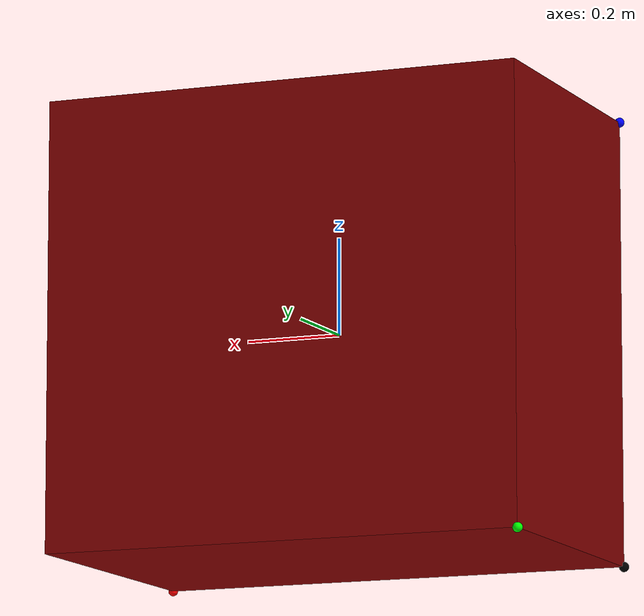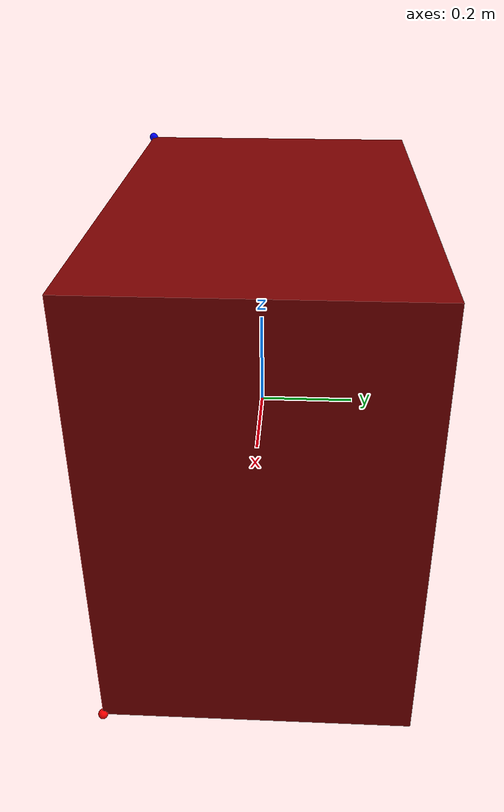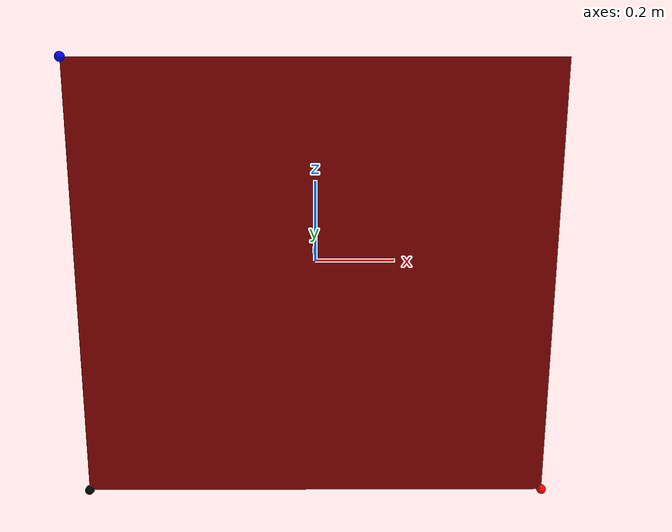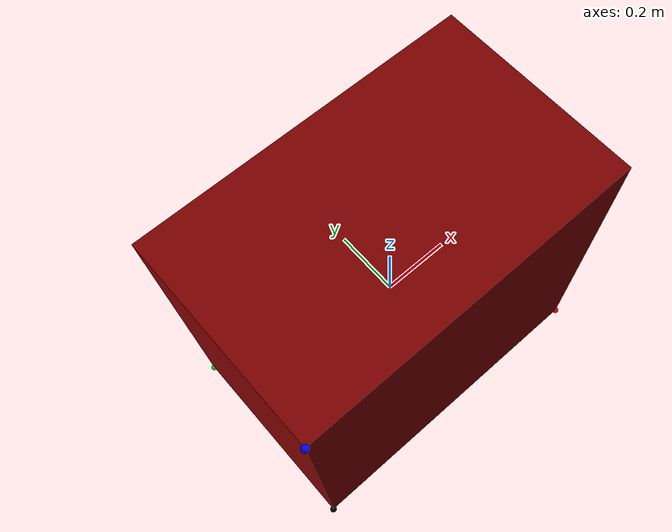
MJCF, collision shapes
<mujoco model="model">
  <compiler angle="radian"/>
  <asset>
    <texture file="visuals/material_0.png" name="tex-model" type="2d"/>
    <texture type="2d" name="image0" file="visuals/image0.png"/>
    <material name="model" reflectance="0.5" texrepeat="1 1" texture="tex-model" texuniform="false"/>
    <material name="Material.001" specular="0.5" shininess="1.0" rgba="0.000000 0.000000 0.000000 1.0"/>
    <material name="Material.002" specular="0.5" shininess="0.809999997" rgba="0.670724 0.670724 0.670724 1.0"/>
    <material name="Material.003" specular="0.5" shininess="1.0" rgba="0.363613 0.363613 0.363613 0.7"/>
    <material name="Material.007" texture="image0" specular="0.5" shininess="0.809999997"/>
    <material name="Material.020" specular="0.5" shininess="0.000996534" rgba="0.141176 0.141176 0.141176 1.0"/>
    <mesh file="visuals/model_0.obj" name="model_0_vis" scale="1 1 1"/>
    <mesh file="visuals/model_1.obj" name="model_1_vis" scale="1 1 1"/>
    <mesh file="visuals/model_2.obj" name="model_2_vis" scale="1 1 1"/>
    <mesh file="visuals/model_3.obj" name="model_3_vis" scale="1 1 1"/>
    <mesh file="visuals/model_4.obj" name="model_4_vis" scale="1 1 1"/>
  </asset>
  <default>
    <default class="visual">
      <geom conaffinity="0" contype="0" group="1" type="mesh"/>
    </default>
    <default class="collision">
      <geom group="0" rgba="0.5 0 0 0.5"/>
    </default>
  </default>
  <worldbody>
    <body>
      <!-- exterior bounding box points -->
      <site rgba="0 0 0 1" size="0.01" pos="-0.5 -0.298 -0.4605261734056509" name="ext_p0"/>
      <site rgba="1 0 0 1" size="0.01" pos="0.5 -0.298 -0.4605261734056509" name="ext_px"/>
      <site rgba="0 1 0 1" size="0.01" pos="-0.5 0.3184207583716783 -0.4605261734056509" name="ext_py"/>
      <site rgba="0 0 1 1" size="0.01" pos="-0.5 -0.298 0.4605261734056509" name="ext_pz"/>
      <!-- interior bounding box points -->
      <body name="object">
        <geom solimp="0.998 0.998 0.001" solref="0.001 1" density="100" friction="0.95 0.3 0.1" type="mesh" mesh="model_0_vis" material="Material.003" class="visual"/>
        <geom solimp="0.998 0.998 0.001" solref="0.001 1" density="100" friction="0.95 0.3 0.1" type="mesh" mesh="model_1_vis" material="Material.001" class="visual"/>
        <geom solimp="0.998 0.998 0.001" solref="0.001 1" density="100" friction="0.95 0.3 0.1" type="mesh" mesh="model_2_vis" material="Material.002" class="visual"/>
        <geom solimp="0.998 0.998 0.001" solref="0.001 1" density="100" friction="0.95 0.3 0.1" type="mesh" mesh="model_3_vis" material="Material.007" class="visual"/>
        <geom solimp="0.998 0.998 0.001" solref="0.001 1" density="100" friction="0.95 0.3 0.1" type="mesh" mesh="model_4_vis" material="Material.020" class="visual"/>
        <geom class="collision" type="box" pos="0 0.012 0" size="0.5 0.31 0.4605261734056509"/>
      </body>
    </body>
  </worldbody>
</mujoco>
